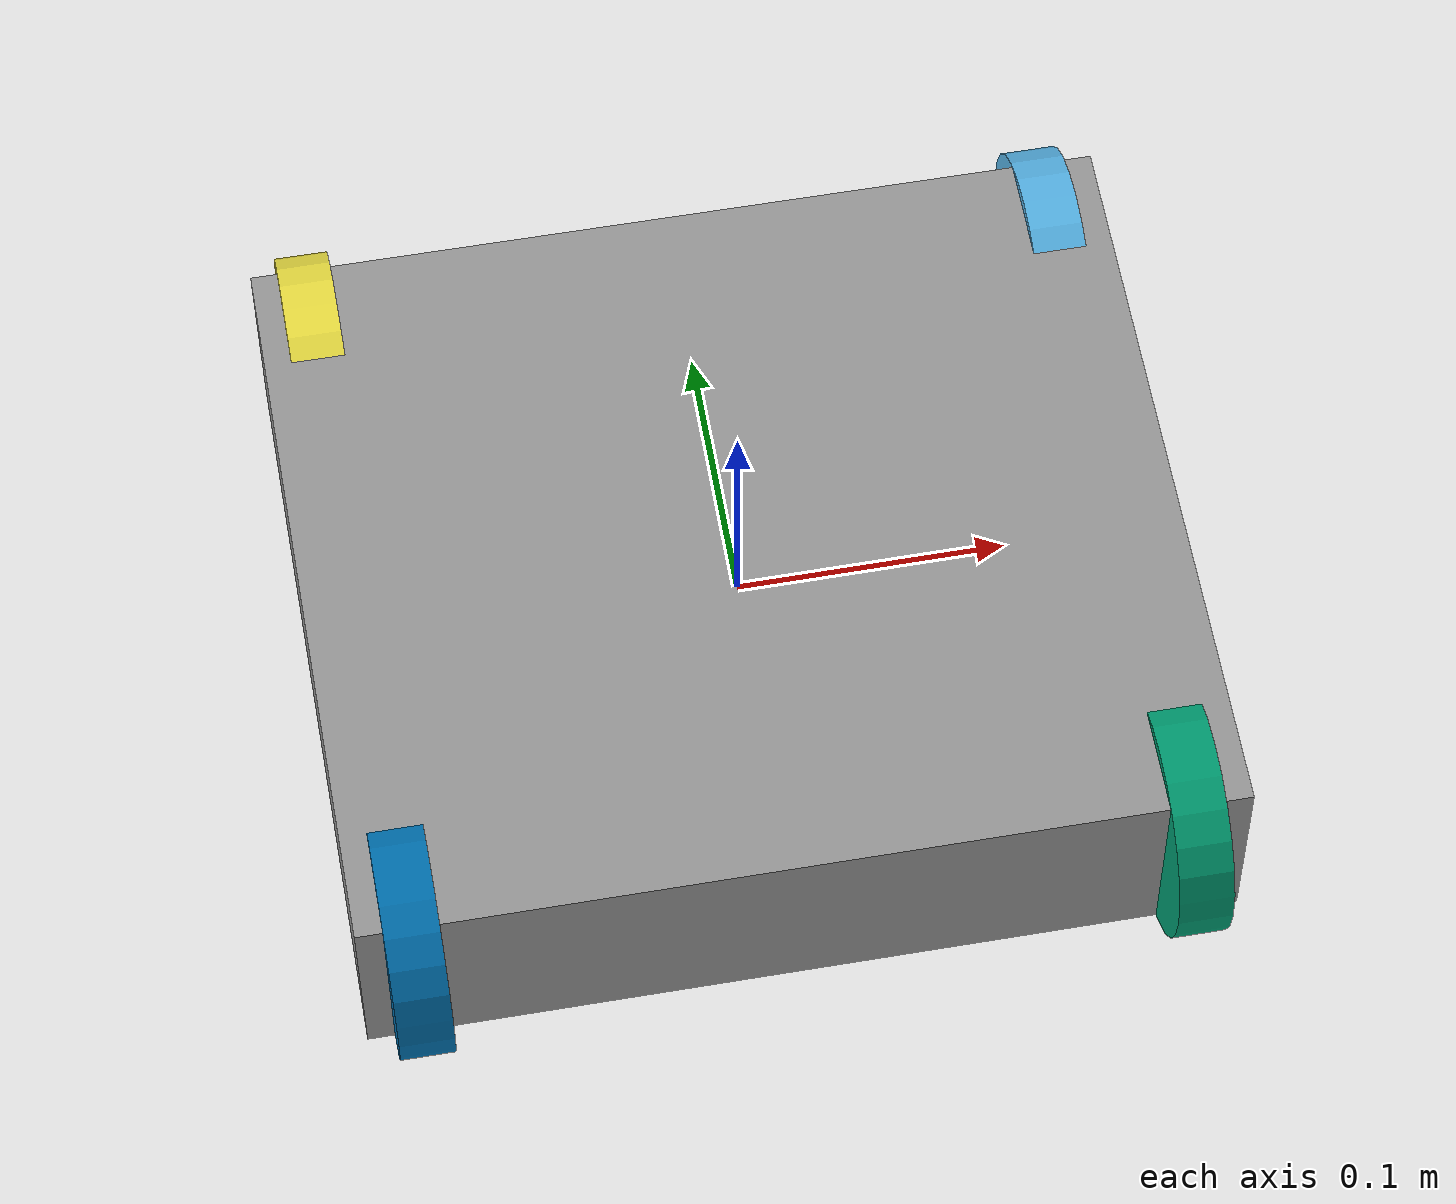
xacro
<?xml version="1.0"?>
<robot name="mecarosmaster" xmlns:xacro="http://www.ros.org/wiki/xacro">
  <xacro:arg name="serial_port" default="/dev/myserial" />
  <xacro:arg name="car_type" default="1" />

  <link name="base_link">
    <visual>
      <geometry>
        <box size="0.32 0.28 0.08" />
      </geometry>
      <material name="gray">
        <color rgba="0.6 0.6 0.6 1.0" />
      </material>
    </visual>
    <collision>
      <geometry>
        <box size="0.32 0.28 0.08" />
      </geometry>
    </collision>
  </link>

  <link name="wheel_fl">
    <visual>
      <geometry>
        <cylinder radius="0.045" length="0.02" />
      </geometry>
    </visual>
  </link>
  <link name="wheel_fr">
    <visual>
      <geometry>
        <cylinder radius="0.045" length="0.02" />
      </geometry>
    </visual>
  </link>
  <link name="wheel_rl">
    <visual>
      <geometry>
        <cylinder radius="0.045" length="0.02" />
      </geometry>
    </visual>
  </link>
  <link name="wheel_rr">
    <visual>
      <geometry>
        <cylinder radius="0.045" length="0.02" />
      </geometry>
    </visual>
  </link>

  <joint name="wheel_fl_joint" type="continuous">
    <parent link="base_link" />
    <child link="wheel_fl" />
    <origin xyz="0.14 0.12 0.0" rpy="0 1.5708 0" />
    <axis xyz="0 0 1" />
  </joint>
  <joint name="wheel_fr_joint" type="continuous">
    <parent link="base_link" />
    <child link="wheel_fr" />
    <origin xyz="0.14 -0.12 0.0" rpy="0 1.5708 0" />
    <axis xyz="0 0 1" />
  </joint>
  <joint name="wheel_rl_joint" type="continuous">
    <parent link="base_link" />
    <child link="wheel_rl" />
    <origin xyz="-0.14 0.12 0.0" rpy="0 1.5708 0" />
    <axis xyz="0 0 1" />
  </joint>
  <joint name="wheel_rr_joint" type="continuous">
    <parent link="base_link" />
    <child link="wheel_rr" />
    <origin xyz="-0.14 -0.12 0.0" rpy="0 1.5708 0" />
    <axis xyz="0 0 1" />
  </joint>

  <xacro:include filename="$(find mecarosmaster_control)/urdf/ros2_control.xacro" />
</robot>
